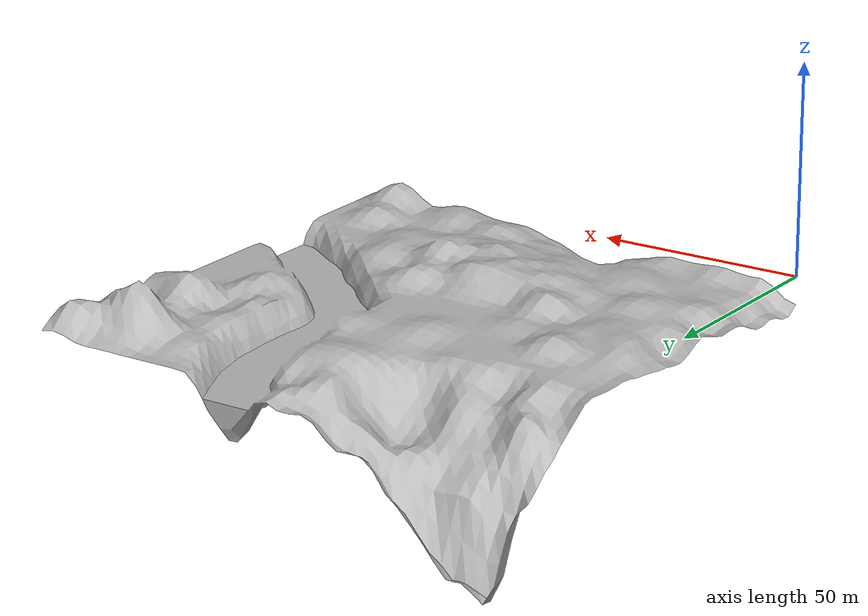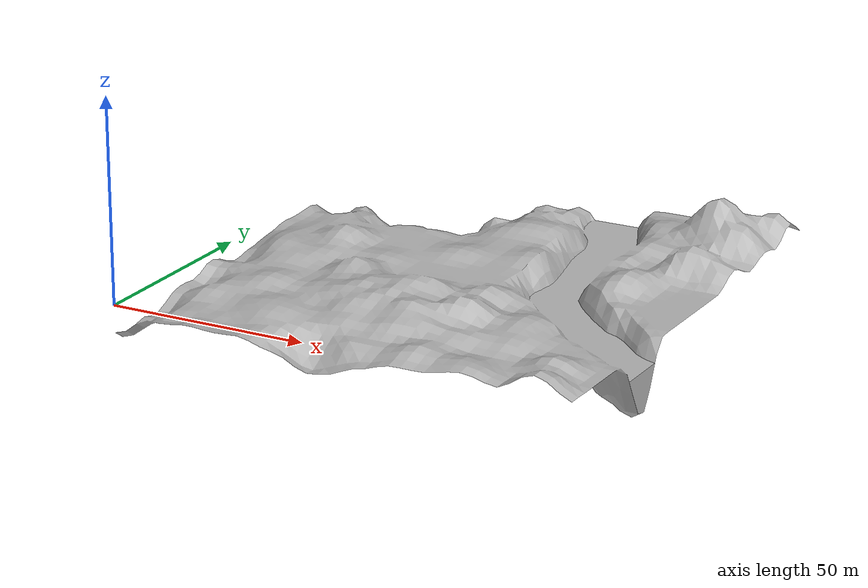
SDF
<?xml version="1.0" encoding="UTF-8"?>
<sdf version="1.5">
	<model name="terrain1">
		<static>true</static>
		<link name="terrain1_link">
			<collision name="terrain1_collision">
				<geometry>
					<box>
						<size>1 1 1</size>
					</box>
				</geometry>
			</collision>

			<visual name="terrain1_mesh">
				<geometry>
					<mesh>
						<uri>model://terrain1/meshes/model.dae</uri>
						<scale>1 1 1</scale><!-- origin 85.9-->
					</mesh>
				</geometry>
			</visual>
		</link>
	</model>
</sdf>
